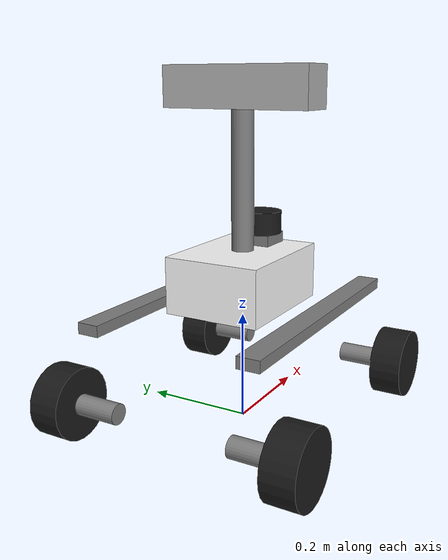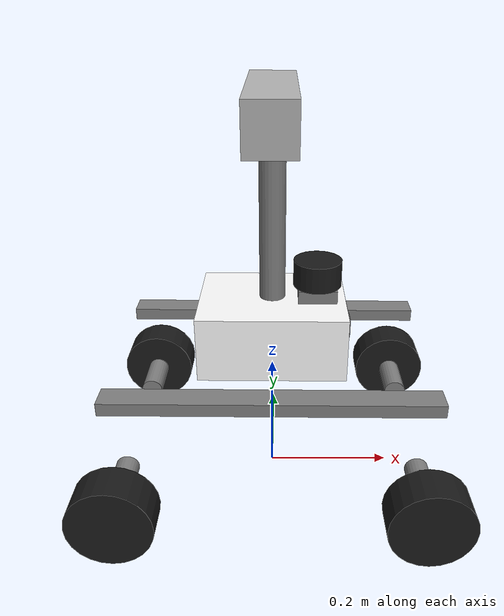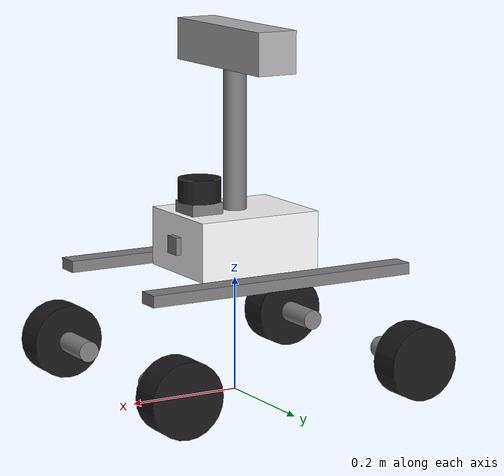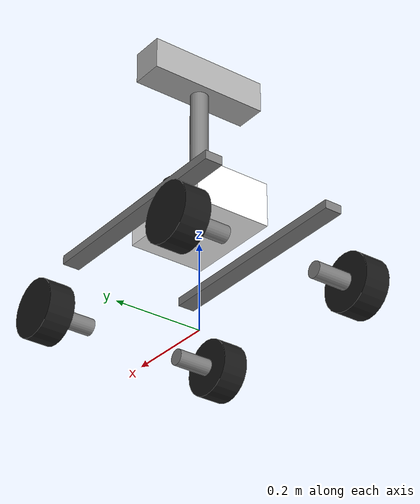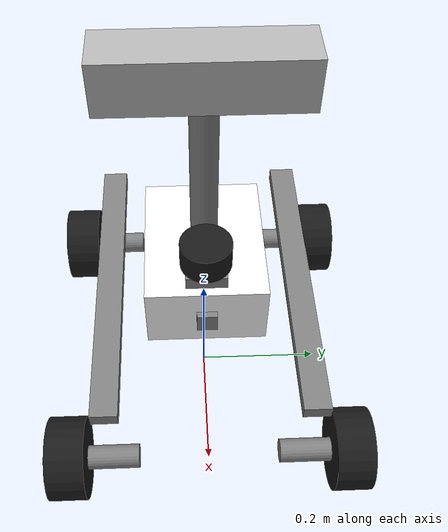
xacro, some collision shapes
<?xml version="1.0"?>
<robot xmlns:xacro="http://www.ros.org/wiki/xacro" name="rover">

  <xacro:include filename="$(find navrover_description)/urdf/rover.gazebo" />
  <xacro:include filename="$(find navrover_description)/urdf/kinect_sensor.xacro" />
  <xacro:property name="PI" value="3.1415926535897931"/>

  <xacro:macro name="default_inertial" params="mass">
    <inertial>
      <mass value="${mass}"/>
      <inertia ixx="1.0" ixy="0.0" ixz="0.0" iyy="1.0" iyz="0.0" izz="1.0"/>
    </inertial>
  </xacro:macro>

  <material name="black">
    <color rgba="0.1 0.1 0.1 1"/>
  </material>
  <material name="gray">
    <color rgba="0.5 0.5 0.5 1"/>
  </material>

  <material name="white">
    <color rgba="1 1 1 1"/>
  </material>

  <!--New base_footprint link -->
  <link name="base_footprint"/>

  <!-- New joint between base_footprint and base_link -->
  <joint name="base_joint" type="fixed">
    <parent link="base_footprint"/>
    <child link="base_link"/>
    <origin xyz="0 0 0.22" rpy="0 0 0"/>
  </joint>

  <!-- Base Link -->
  <link name="base_link">
    <visual>
      <origin xyz="0 0 0.051" rpy="0 0 ${PI}"/>
      <geometry>
        <box size="0.228 0.178 0.102"/>
      </geometry>
      <material name="white"/>
    </visual>
    <collision>
      <origin xyz="0 0 0.051" rpy="0 0 ${PI}"/>
      <geometry>
        <box size="0.228 0.178 0.102"/>
      </geometry>
    </collision>
    <inertial>
      <origin xyz="-0.005 0 0.031" rpy="0 0 ${PI}"/>
      <mass value="5.0"/>
      <inertia ixx="0.0033" ixy="0" ixz="0" iyy="0.0033" iyz="0" izz="0.0033"/>
    </inertial>
  </link>

  <!-- Lidar Mount Link -->
  <link name="lidar_mount">
    <visual>
      <origin xyz="0 0 0.01" rpy="0 0 ${PI}"/>
      <geometry>
        <box size="0.06 0.06 0.02"/>
      </geometry>
      <material name="gray"/>
    </visual>
    <collision>
      <origin xyz="0 0 0.0192" rpy="0 0 ${PI}"/>
      <geometry>
        <box size="0.06 0.06 0.02"/>
      </geometry>
    </collision>
    <inertial>
      <mass value="0.05"/>
      <inertia ixx="0.0001" ixy="0" ixz="0" iyy="0.0001" iyz="0" izz="0.0001"/>
    </inertial>
  </link>

  <!-- Lidar Mount Joint -->
  <joint name="lidar_mount_joint" type="fixed">
    <parent link="base_link"/>
    <child link="lidar_mount"/>
    <origin xyz="0.07 0 0.102" rpy="0 0 ${PI}"/>
  </joint>

  <!-- Lidar Link -->
  <link name="lidar_link">
    <visual>
      <origin xyz="0 0 0.0205" rpy="0 0 ${PI}"/>
      <geometry>
        <cylinder radius="0.0375" length="0.041"/>
      </geometry>
      <material name="black"/>
    </visual>
    <collision>
      <origin xyz="0 0 0.0205" rpy="0 0 ${PI}"/>
      <geometry>
        <cylinder radius="0.0375" length="0.041"/>
      </geometry>
    </collision>
    <inertial>
      <mass value="0.19"/>
      <inertia ixx="0.0001" ixy="0" ixz="0" iyy="0.0001" iyz="0" izz="0.0001"/>
    </inertial>
  </link>

  <!-- Lidar Joint -->
  <joint name="lidar_joint" type="fixed">
    <parent link="lidar_mount"/>
    <child link="lidar_link"/>
    <origin xyz="0 0 0.02" rpy="0 0 0"/>
  </joint>

    <!-- Depth Camera Mount Link -->
  <link name="depth_camera_mount">
    <visual>
      <origin xyz="0 0 0.125" rpy="0 0 0"/>
      <geometry>
        <cylinder radius="0.02" length="0.25"/>
      </geometry>
      <material name="gray"/>
    </visual>
    <collision>
      <origin xyz="0 0 0.125" rpy="0 0 0"/>
      <geometry>
        <cylinder radius="0.02" length="0.25"/>
      </geometry>
    </collision>
    <inertial>
      <mass value="0.1"/>
      <inertia ixx="0.000208" ixy="0" ixz="0" iyy="0.000208" iyz="0" izz="0.00002"/>
    </inertial>
  </link>

  <!-- Depth Camera Mount Joint -->
  <joint name="depth_camera_mount_joint" type="fixed">
    <parent link="base_link"/>
    <child link="depth_camera_mount"/>
    <origin xyz="0 0 0.102" rpy="0 0 0"/>
  </joint>

  <xacro:sensor_kinect parent="depth_camera_mount" />

    <!-- Camera Link -->
  <link name="camera_link">
    <visual>
      <origin xyz="0 0 0" rpy="0 0 ${PI}"/>
      <geometry>
        <box size="0.02 0.03 0.03"/>
      </geometry>
      <material name="gray"/>
    </visual>
    <collision>
      <origin xyz="0 0 0" rpy="0 0 ${PI}"/>
      <geometry>
        <box size="0.03 0.03 0.03"/>
      </geometry>
    </collision>
    <inertial>
      <mass value="0.1"/>
      <inertia ixx="0.0001" ixy="0" ixz="0" iyy="0.0001" iyz="0" izz="0.0001"/>
    </inertial>
  </link>

  <!-- Camera Joint -->
  <joint name="camera_joint" type="fixed">
    <parent link="base_link"/>
    <child link="camera_link"/>
    <origin xyz="0.114 0 0.05" rpy="0 0 0"/>
  </joint>

  <xacro:macro name="rocker" params="prefix reflect">
    <link name="${prefix}_rocker">
      <visual>
        <geometry>
          <box size="0.500 0.020 0.040"/>
        </geometry>
        <material name="gray"/>
      </visual>
      <collision>
        <geometry>
          <box size="0.500 0.020 0.040"/>
        </geometry>
      </collision>
      <inertial>
        <origin xyz="0 0 0"/>
        <mass value="0.5"/>
        <inertia ixx="0.00104" ixy="0" ixz="0" iyy="0.01046" iyz="0" izz="0.00948"/>
      </inertial>
    </link>

    <joint name="${prefix}_rocker_joint" type="revolute">
      <parent link="base_link"/>
      <child link="${prefix}_rocker"/>
      <origin xyz="0 ${reflect * -0.15} 0.001" rpy="${PI/2} 0 0"/>
      <axis xyz="0 0 1"/>
      <limit lower="-0.24" upper="0.24" effort="100" velocity="100.0"/>
      <dynamics friction="1.0" damping="0.1"/>
    </joint>
  </xacro:macro>

  <xacro:rocker prefix="left" reflect="1"/>
  <xacro:rocker prefix="right" reflect="-1"/>

  <xacro:macro name="motor" params="prefix parent_link x_pos y_pos z_pos">
    <link name="motor_${prefix}">
      <visual>
        <geometry>
          <cylinder radius="0.0185" length="0.080"/>
        </geometry>
        <material name="gray"/>
      </visual>
      <collision>
        <geometry>
          <cylinder radius="0.0185" length="0.080"/>
        </geometry>
      </collision>
      <inertial>
        <mass value="0.2"/>
        <inertia ixx="0.00004" ixy="0" ixz="0" iyy="0.00004" iyz="0" izz="0.00002"/>
      </inertial>
    </link>

    <joint name="motor_${prefix}_joint" type="fixed">
      <parent link="${parent_link}"/>
      <child link="motor_${prefix}"/>
      <origin xyz="${x_pos} ${y_pos} ${z_pos}" rpy="0 0 0"/>
    </joint>
  </xacro:macro>

  <xacro:motor prefix="rr" parent_link="left_rocker" x_pos="-0.230" y_pos="-0.15" z_pos="0"/>
  <xacro:motor prefix="rl" parent_link="right_rocker" x_pos="-0.230" y_pos="-0.15" z_pos="0"/>
  <xacro:motor prefix="fr" parent_link="left_rocker" x_pos="0.230" y_pos="-0.15" z_pos="0"/>
  <xacro:motor prefix="fl" parent_link="right_rocker" x_pos="0.230" y_pos="-0.15" z_pos="0"/>

  <xacro:macro name="wheel" params="prefix parent_link z_offset">
    <link name="wheel_${prefix}">
      <visual>
        <geometry>
          <cylinder radius="0.065" length="0.058785"/>
        </geometry>
        <material name="black"/>
      </visual>
      <collision>
        <geometry>
          <cylinder radius="0.065" length="0.058785"/>
        </geometry>
      </collision>
      <inertial>
        <mass value="0.5"/>
        <inertia ixx="0.00032" ixy="0" ixz="0" iyy="0.00032" iyz="0" izz="0.00063"/>
      </inertial>
    </link>

    <joint name="wheel_${prefix}_joint" type="continuous">
      <parent link="${parent_link}"/>
      <child link="wheel_${prefix}"/>
      <origin xyz="0 0 ${z_offset}" rpy="${PI} 0 0"/>
      <axis xyz="0 0 1"/>
      <limit effort="2.0" velocity="6.0"/>
      <dynamics friction="0.3125" damping="0.1"/>
    </joint>
  </xacro:macro>

  <xacro:wheel prefix="fr" parent_link="motor_fr" z_offset="0.07"/>
  <xacro:wheel prefix="fl" parent_link="motor_fl" z_offset="-0.07"/>
  <xacro:wheel prefix="rr" parent_link="motor_rr" z_offset="0.07"/>
  <xacro:wheel prefix="rl" parent_link="motor_rl" z_offset="-0.07"/>

  <!-- Transmissions for ros_control -->
  <transmission name="left_rocker_trans">
    <type>transmission_interface/SimpleTransmission</type>
    <joint name="left_rocker_joint">
      <hardwareInterface>hardware_interface/EffortJointInterface</hardwareInterface>
    </joint>
    <actuator name="left_rocker_motor">
      <hardwareInterface>hardware_interface/EffortJointInterface</hardwareInterface>
      <mechanicalReduction>1</mechanicalReduction>
    </actuator>
  </transmission>

  <transmission name="right_rocker_trans">
    <type>transmission_interface/SimpleTransmission</type>
    <joint name="right_rocker_joint">
      <hardwareInterface>hardware_interface/EffortJointInterface</hardwareInterface>
    </joint>
    <actuator name="right_rocker_motor">
      <hardwareInterface>hardware_interface/EffortJointInterface</hardwareInterface>
      <mechanicalReduction>1</mechanicalReduction>
    </actuator>
  </transmission>

</robot>

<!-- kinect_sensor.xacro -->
<robot name="sensor_kinect" xmlns:xacro="http://ros.org/wiki/xacro">
<xacro:property name="PI" value="3.1415926535897931"/>

  <!-- Define the properties here if they're not defined elsewhere -->
  <xacro:property name="cam_px" value="0.03" />
  <xacro:property name="cam_py" value="0" />
  <xacro:property name="cam_pz" value="0.30" />
  <xacro:property name="cam_or" value="0" />
  <xacro:property name="cam_op" value="0" />
  <xacro:property name="cam_oy" value="0" />

  <!-- Parameterised in part by the values in turtlebot_properties.urdf.xacro -->
  <xacro:macro name="sensor_kinect" params="parent">
    <joint name="camera_rgb_joint" type="fixed">
      <origin xyz="${cam_px} ${cam_py} ${cam_pz}" rpy="${cam_or} ${cam_op} ${cam_oy}"/>
      <parent link="${parent}"/>
      <child link="camera_rgb_frame" />
    </joint>
    <link name="camera_rgb_frame">
      <inertial>
        <mass value="0.001" />
        <origin xyz="0 0 0" />
        <inertia ixx="0.0001" ixy="0.0" ixz="0.0"
                 iyy="0.0001" iyz="0.0"
                 izz="0.0001" />
      </inertial>
    </link>
    <joint name="camera_rgb_optical_joint" type="fixed">
      <origin xyz="0 0 0" rpy="${-PI/2} 0 ${-PI/2}" />
      <parent link="camera_rgb_frame" />
      <child link="camera_rgb_optical_frame" />
    </joint>
    <link name="camera_rgb_optical_frame">
      <inertial>
        <mass value="0.001" />
        <origin xyz="0 0 0" />
        <inertia ixx="0.0001" ixy="0.0" ixz="0.0"
                 iyy="0.0001" iyz="0.0"
                 izz="0.0001" />
      </inertial>
    </link>

  <joint name="depth_camera_joint" type="fixed">
    <origin xyz="-0.031 ${-cam_py} -0.016" rpy="0 0 0"/>
    <parent link="camera_rgb_frame"/>
    <child link="depth_camera_link"/>
  </joint>
    <link name="depth_camera_link">
    <visual>
     <origin xyz="0 0 0" rpy="0 0 ${PI/2}"/>
      <geometry>
       <mesh filename="package://navrover_description/meshes/sensors/kinect.dae"/>
      </geometry>
    </visual>
	  <collision>
      <origin xyz="0.0 0.0 0.0" rpy="0 0 0"/>
	    <geometry>
	      <box size="0.07271 0.27794 0.073"/>
	    </geometry>
	  </collision>
    <inertial>
      <mass value="0.001" />
      <origin xyz="0 0 0" />
      <inertia ixx="0.0001" ixy="0.0" ixz="0.0"
               iyy="0.0001" iyz="0.0"
               izz="0.0001" />
    </inertial>
  </link>

	<joint name="camera_depth_joint" type="fixed">
	  <origin xyz="0 ${2 * -cam_py} 0" rpy="0 0 0" />
	  <parent link="camera_rgb_frame" />
	  <child link="camera_depth_frame" />
	</joint>
	<link name="camera_depth_frame">
    <inertial>
      <mass value="0.001" />
      <origin xyz="0 0 0" />
      <inertia ixx="0.0001" ixy="0.0" ixz="0.0"
               iyy="0.0001" iyz="0.0"
               izz="0.0001" />
    </inertial>
	</link>
	<joint name="camera_depth_optical_joint" type="fixed">
	  <origin xyz="0 0 0" rpy="${-PI/2} 0 ${-PI/2}" />
	  <parent link="camera_depth_frame" />
	  <child link="camera_depth_optical_frame" />
	</joint>
	<link name="camera_depth_optical_frame">
    <inertial>
      <mass value="0.001" />
      <origin xyz="0 0 0" />
      <inertia ixx="0.0001" ixy="0.0" ixz="0.0"
               iyy="0.0001" iyz="0.0"
               izz="0.0001" />
    </inertial>
	</link>
  </xacro:macro>
</robot>
